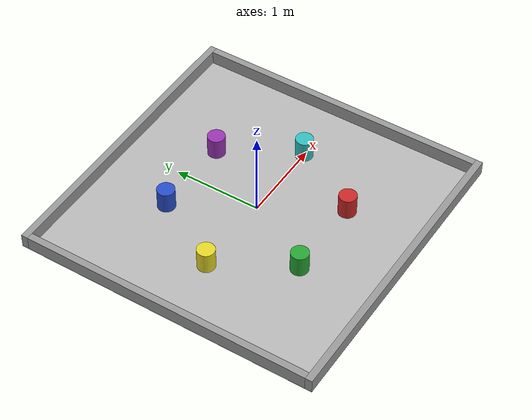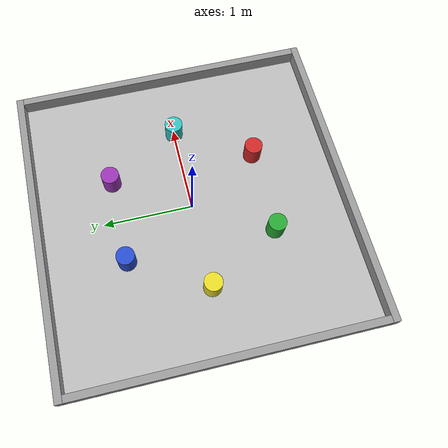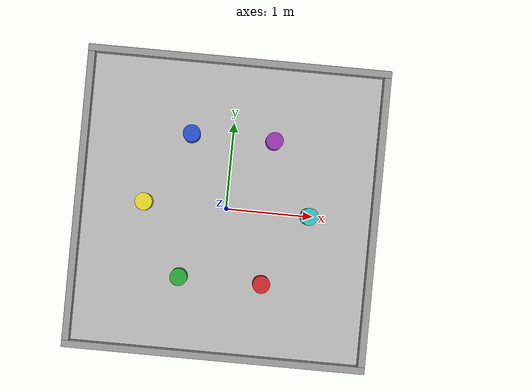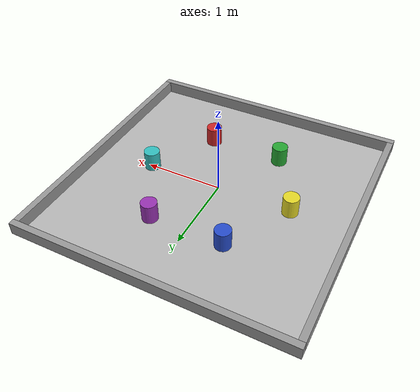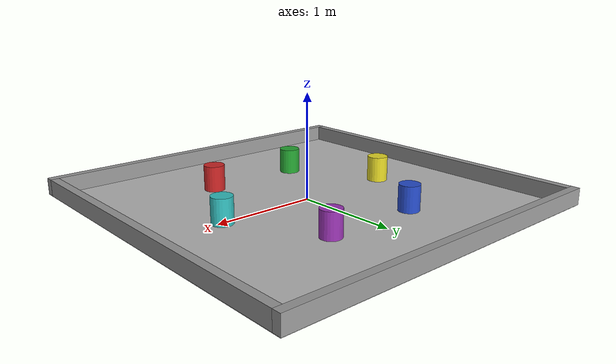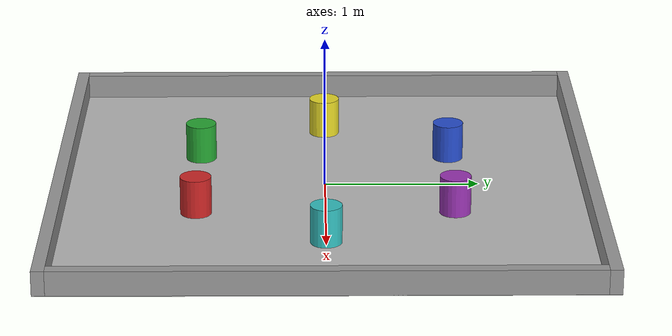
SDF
<sdf version='1.6'>
  <world name='default'>
    <!-- A global light source -->
    <include>
      <uri>model://sun</uri>
    </include>

    <gravity>0 0 -9.8</gravity>

    <magnetic_field>6e-06 2.3e-05 -4.2e-05</magnetic_field>

    <atmosphere type='adiabatic'/>

    <physics name='default_physics' default='0' type='ode'>
      <max_step_size>0.001</max_step_size>
      <real_time_factor>1</real_time_factor>
      <real_time_update_rate>1000</real_time_update_rate>
    </physics>

    <scene>
      <ambient>0.4 0.4 0.4 1</ambient>
      <background>0.7 0.7 0.7 1</background>
      <shadows>1</shadows>
    </scene>

    <gui fullscreen='0'>
      <camera name='user_camera'>
        <pose frame=''>2.892 -2.630 3.066 0 0.728 2.417</pose>
        <view_controller>orbit</view_controller>
        <projection_type>perspective</projection_type>
      </camera>
    </gui>

    <include>
      <uri>model://beacon_colours_floor</uri>
    </include>
    <include>
      <uri>model://cr3_arena_walls</uri>
    </include>
    <model name='beacons'>
      <pose frame=''>0 0 0.125 0 0 0</pose>
      <link name='obstacle'>
        <collision name='bcn_turq'>
          <pose>0.9527 0 0 0 0 0</pose>
          <geometry>
            <cylinder>
              <radius>0.1</radius>
              <length>0.25</length>
            </cylinder>
          </geometry>
          <max_contacts>10</max_contacts>
          <surface>
            <bounce/>
            <friction>
              <ode/>
            </friction>
            <contact>
              <ode/>
            </contact>
          </surface>
        </collision>
        <visual name='bcn_turq'>
          <pose>0.9527 0 0 0 0 0</pose>
          <geometry>
            <cylinder>
              <radius>0.1</radius>
              <length>0.25</length>
            </cylinder>
          </geometry>
          <material>
            <script>
              <uri>file://media/materials/scripts/gazebo.material</uri>
              <name>Gazebo/Turquoise</name>
            </script>
          </material>
        </visual>
        <collision name='bcn_red'>
          <pose>0.4764 -0.8251 0 0 0 0</pose>
          <geometry>
            <cylinder>
              <radius>0.1</radius>
              <length>0.25</length>
            </cylinder>
          </geometry>
          <max_contacts>10</max_contacts>
          <surface>
            <bounce/>
            <friction>
              <ode/>
            </friction>
            <contact>
              <ode/>
            </contact>
          </surface>
        </collision>
        <visual name='bcn_red'>
          <pose>0.4764 -0.8251 0 0 0 0</pose>
          <geometry>
            <cylinder>
              <radius>0.1</radius>
              <length>0.25</length>
            </cylinder>
          </geometry>
          <material>
            <script>
              <uri>file://media/materials/scripts/gazebo.material</uri>
              <name>Gazebo/Red</name>
            </script>
          </material>
        </visual>
        <collision name='bcn_green'>
          <pose>-0.4764 -0.8251 0 0 0 0</pose>
          <geometry>
            <cylinder>
              <radius>0.1</radius>
              <length>0.25</length>
            </cylinder>
          </geometry>
          <max_contacts>10</max_contacts>
          <surface>
            <bounce/>
            <friction>
              <ode/>
            </friction>
            <contact>
              <ode/>
            </contact>
          </surface>
        </collision>
        <visual name='bcn_green'>
          <pose>-0.4764 -0.8251 0 0 0 0</pose>
          <geometry>
            <cylinder>
              <radius>0.1</radius>
              <length>0.25</length>
            </cylinder>
          </geometry>
          <material>
            <script>
              <uri>file://media/materials/scripts/gazebo.material</uri>
              <name>Gazebo/Green</name>
            </script>
          </material>
        </visual>

        <collision name='bcn_yellow'>
          <pose>-0.9527 0 0 0 0 0</pose>
          <geometry>
            <cylinder>
              <radius>0.1</radius>
              <length>0.25</length>
            </cylinder>
          </geometry>
          <max_contacts>10</max_contacts>
          <surface>
            <bounce/>
            <friction>
              <ode/>
            </friction>
            <contact>
              <ode/>
            </contact>
          </surface>
        </collision>
        <visual name='bcn_yellow'>
          <pose>-0.9527 0 0 0 0 0</pose>
          <geometry>
            <cylinder>
              <radius>0.1</radius>
              <length>0.25</length>
            </cylinder>
          </geometry>
          <material>
            <script>
              <uri>file://media/materials/scripts/gazebo.material</uri>
              <name>Gazebo/Yellow</name>
            </script>
          </material>
        </visual>
        <collision name='bcn_blue'>
          <pose>-0.4764 0.8251 0 0 0 0</pose>
          <geometry>
            <cylinder>
              <radius>0.1</radius>
              <length>0.25</length>
            </cylinder>
          </geometry>
          <max_contacts>10</max_contacts>
          <surface>
            <bounce/>
            <friction>
              <ode/>
            </friction>
            <contact>
              <ode/>
            </contact>
          </surface>
        </collision>
        <visual name='bcn_blue'>
          <pose>-0.4764 0.8251 0 0 0 0</pose>
          <geometry>
            <cylinder>
              <radius>0.1</radius>
              <length>0.25</length>
            </cylinder>
          </geometry>
          <material>
            <script>
              <uri>file://media/materials/scripts/gazebo.material</uri>
              <name>Gazebo/Blue</name>
            </script>
          </material>
        </visual>
        <collision name='bcn_purple'>
          <pose>0.4764 0.8251 0 0 0 0</pose>
          <geometry>
            <cylinder>
              <radius>0.1</radius>
              <length>0.25</length>
            </cylinder>
          </geometry>
          <max_contacts>10</max_contacts>
          <surface>
            <bounce/>
            <friction>
              <ode/>
            </friction>
            <contact>
              <ode/>
            </contact>
          </surface>
        </collision>
        <visual name='bcn_purple'>
          <pose>0.4764 0.8251 0 0 0 0</pose>
          <geometry>
            <cylinder>
              <radius>0.1</radius>
              <length>0.25</length>
            </cylinder>
          </geometry>
          <material>
            <script>
              <uri>file://media/materials/scripts/gazebo.material</uri>
              <name>Gazebo/Purple</name>
            </script>
          </material>
        </visual>
      </link>
      <static>1</static>
    </model>
  </world>
</sdf>

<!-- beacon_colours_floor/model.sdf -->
<sdf version="1.4">
<model name="beacon_colours_floor">
  <static>true</static>
    <link name="link">
      <collision name="collision">
        <geometry>
          <plane>
            <normal>0 0 1</normal>
            <size>3.5 3.5</size>
          </plane>
        </geometry>
        <surface>
          <friction>
            <ode>
              <mu>100</mu>
              <mu2>50</mu2>
            </ode>
          </friction>
        </surface>
      </collision>
      <visual name="visual">
        <cast_shadows>false</cast_shadows>
        <geometry>
          <plane>
            <normal>0 0 1</normal>
            <size>3.5 3.5</size>
          </plane>
        </geometry>
        <material>
          <script>
            <uri>model://beacon_colours_floor/materials/scripts</uri>
            <uri>model://beacon_colours_floor/materials/textures</uri>
            <name>BeaconColoursFloor/Image</name>
          </script>
        </material>
      </visual>
    </link>
  </model>
</sdf>

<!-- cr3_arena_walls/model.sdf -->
<sdf version='1.6'>
  <model name='small_arena_walls'>
    <pose frame=''>0 0 0.08 0 0 0</pose>
    <link name='Right_Wall'>
      <collision name='Right_Wall_Collision'>
        <geometry>
          <box>
            <size>3.50 0.08 0.16</size>
          </box>
        </geometry>
      </collision>
      <visual name='Right_Wall_Visual'>
        <geometry>
          <box>
            <size>3.50 0.08 0.16</size>
          </box>
        </geometry>
        <material>
          <script>
            <uri>file://media/materials/scripts/gazebo.material</uri>
            <name>Gazebo/Grey</name>
          </script>
          <ambient>1 1 1 1</ambient>
        </material>
      </visual>
      <pose frame=''>0 1.71 0 0 0 0</pose>
    </link>
    <link name='Back_Wall'>
      <collision name='Back_Wall_Collision'>
        <geometry>
          <box>
            <size>0.08 3.34 0.16</size>
          </box>
        </geometry>
      </collision>
      <visual name='Back_Wall_Visual'>
        <geometry>
          <box>
            <size>0.08 3.34 0.16</size>
          </box>
        </geometry>
        <material>
          <script>
            <uri>file://media/materials/scripts/gazebo.material</uri>
            <name>Gazebo/Grey</name>
          </script>
          <ambient>1 1 1 1</ambient>
        </material>
      </visual>
      <pose frame=''>-1.71 0 0 0 0 0</pose>
    </link>
    <link name='Left_Wall'>
      <collision name='Left_Wall_Collision'>
        <geometry>
          <box>
            <size>3.50 0.08 0.16</size>
          </box>
        </geometry>
      </collision>
      <visual name='Left_Wall_Visual'>
        <geometry>
          <box>
            <size>3.50 0.08 0.16</size>
          </box>
        </geometry>
        <material>
          <script>
            <uri>file://media/materials/scripts/gazebo.material</uri>
            <name>Gazebo/Grey</name>
          </script>
          <ambient>1 1 1 1</ambient>
        </material>
      </visual>
      <pose frame=''>0 -1.71 0 0 0 0</pose>
    </link>
    <link name='Front_Wall'>
      <collision name='Front_Wall_Collision'>
        <geometry>
          <box>
            <size>0.08 3.34 0.16</size>
          </box>
        </geometry>
      </collision>
      <visual name='Front_Wall_Visual'>
        <geometry>
          <box>
            <size>0.08 3.34 0.16</size>
          </box>
        </geometry>
        <material>
          <script>
            <uri>file://media/materials/scripts/gazebo.material</uri>
            <name>Gazebo/Grey</name>
          </script>
          <ambient>1 1 1 1</ambient>
        </material>
      </visual>
      <pose frame=''>1.71 0 0 0 0 0</pose>
    </link>
    <static>1</static>
  </model>
</sdf>
